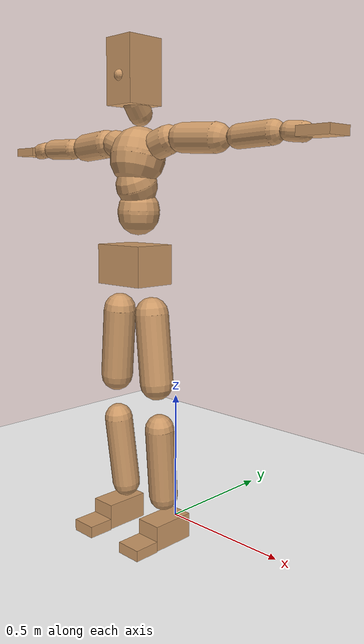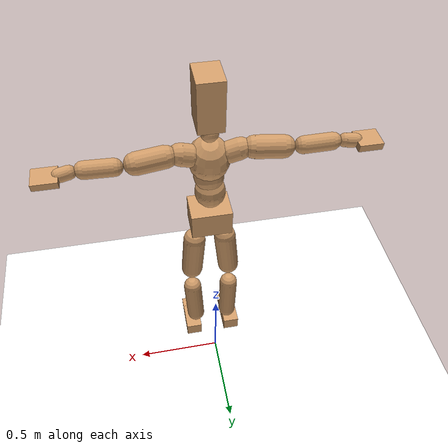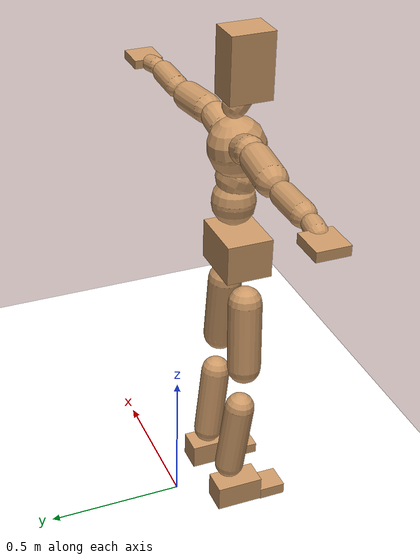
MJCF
<mujoco model="humanoid">
  <option integrator="implicitfast" />

  <visual>
    <global offwidth="1280" offheight="960" />
    <headlight active="1" ambient="0.34 0.34 0.34" diffuse="0.5 0.5 0.5" />
  </visual>

  <default>
    <joint damping="2" stiffness="2" armature="0.01" limited="true" solimplimit="0 .99 .01" />
    <geom condim="1" friction="0.7 0.005 0.0001" solimp=".99 .99 .003" solref="0.015 1" margin="0.001" rgba="0.8 0.6 .4 1" />
    <default class="smplcontact">
      <geom condim="3" friction="1. 0.005 0.0001" solref="0.015 1" solimp="0.98 0.98 0.001" priority="1" />
    </default>
    <default class="stiff_medium">
      <joint stiffness="10" />
    </default>
    <default class="stiff_medium_higher">
      <joint stiffness="50" />
    </default>
    <default class="stiff_high">
      <joint stiffness="100" />
    </default>
  </default>

  <asset>
    <texture type="skybox" builtin="gradient" rgb1="0.99 0.99 0.99" rgb2="0.608 0.828 0.892" width="100" />
    <texture builtin="flat" height="1278" mark="cross" markrgb="1 1 1" name="texgeom" random="0.01" rgb1="0.8 0.6 0.4" rgb2="0.8 0.6 0.4" type="cube" width="127" />
    <texture name="texplane" type="2d" builtin="checker" markrgb="1 1 1" rgb1="0.756 0.772 0.76" rgb2="0.6 0.6 0.6" width="100" height="100" />
    <material name="MatPlane" reflectance="0.5" texture="texplane" texrepeat="1 1" texuniform="true" />
    <material name="geom" texture="texgeom" texuniform="true" />
  </asset>

  <worldbody>
    <light name="tracking_light" pos="0 0 7" dir="0 0 -1" directional="true" cutoff="100" exponent="1" diffuse="1 1 1" specular="0.1 0.1 0.1" mode="trackcom" />
    <camera name="back" pos="0 3 2.4" xyaxes="-1 0 0 0 -1 2" mode="trackcom" />
    <camera name="side" pos="-3 0 2.4" xyaxes="0 -1 0 1 0 2" mode="trackcom" />
    <camera name="front_side" pos="-2.8 -2.8 0.8" xyaxes="0.5 -0.5 0 0.1 0.1 1" mode="trackcom" />
    <geom condim="3" name="floor" pos="0 0 0" rgba="1 1 1 1" size="100 100 .2" type="plane" material="MatPlane" />
    <body name="Pelvis" pos="-0.0018 -0.2233 1.05109" euler="90 0 0">
      <site name="Pelvis" size="0.01" />
      <freejoint name="Pelvis" />
      <geom type="box" pos="-0.0000 -0.0121 -0.0055" size="0.1069 0.0722 0.083" quat="1.0000 0.0000 0.0000 0.0000" density="3165.830099" name="Pelvis" />
      <body name="L_Hip" pos="0.0781875 -0.102825 -0.00765">
        <joint name="L_Hip_x" type="hinge" pos="0 0 0" axis="1 0 0" stiffness="12.190417346938776" range="-160.0 22.92" class="stiff_medium" damping="19.23943835853268" armature="0.013495335550763795"/>
        <joint name="L_Hip_y" type="hinge" pos="0 0 0" axis="0 1 0" stiffness="12.1624156122449" range="-70.0 70.0" class="stiff_medium" damping="12.013485255911052" armature="0.011866378571103064"/>
        <joint name="L_Hip_z" type="hinge" pos="0 0 0" axis="0 0 1" stiffness="12.164813061224491" range="-28.65 90.0" class="stiff_medium" damping="12.81394800146982" armature="0.013497721876857561"/>
        <geom type="capsule" density="2040.816327" fromto="0.0077625 -0.084375 -0.0010125 0.030825 -0.337725 -0.00405" size="0.0615" name="L_Hip" />
        <body name="L_Knee" pos="0.0385875 -0.4221 -0.0050625">
          <joint name="L_Knee_x" type="hinge" pos="0 0 0" axis="1 0 0" range="-5.16 171.89" damping="10.076823862713262" armature="0.013188848617403126" stiffness="2.4059714693877554"/>
          <joint name="L_Knee_y" type="hinge" pos="0 0 0" axis="0 1 0" range="-4.58 6.88" damping="9.486100019400165" armature="0.01159601950664256" stiffness="2.4250264693877552"/>
          <joint name="L_Knee_z" type="hinge" pos="0 0 0" axis="0 0 1" range="-6.88 4.58" damping="10.063496829521757" armature="0.013200099383969124" stiffness="2.3975664285714284"/>
          <geom type="capsule" density="1234.567901" fromto="-0.0030375 -0.08955 -0.0097875 -0.0122625 -0.3582 -0.039375" size="0.0541" name="L_Knee" />
          <body name="L_Ankle" pos="-0.0153 -0.44775 -0.0491625">
            <joint name="L_Ankle_x" type="hinge" pos="0 0 0" axis="1 0 0" range="-45.84 45.84" class="stiff_medium" damping="6.89753281842308" armature="0.011747130867095197" stiffness="11.250018673469388"/>
            <joint name="L_Ankle_y" type="hinge" pos="0 0 0" axis="0 1 0" range="-74.48 22.92" class="stiff_medium" damping="3.439211388477543" armature="0.011682135831686718" stiffness="11.250011836734695"/>
            <joint name="L_Ankle_z" type="hinge" pos="0 0 0" axis="0 0 1" range="-4.58 4.58" class="stiff_medium" damping="6.751978545825227" armature="0.011256596119329419" stiffness="11.25"/>
            <geom type="box" pos="0.0262125 -0.0268875 0.027225" size="0.0483 0.0464 0.085" quat="1.0000 0.0000 0.0000 0.0000" density="449.071558" name="L_Ankle" class="smplcontact" />
            <body name="L_Toe" pos="0.0297 -0.062775 0.134213">
              <joint name="L_Toe_x" type="hinge" pos="0 0 0" axis="1 0 0" range="-91.67 22.92" armature="0.011009874139728131" damping="2.2258578936845135" stiffness="2.25"/>
              <joint name="L_Toe_y" type="hinge" pos="0 0 0" axis="0 1 0" range="-4.58 4.58" armature="0.010711537859158194" damping="2.1954935747164432" stiffness="2.25"/>
              <joint name="L_Toe_z" type="hinge" pos="0 0 0" axis="0 0 1" range="-4.58 4.58" armature="0.010108317957717388" damping="2.132778254055687" stiffness="2.25"/>
              <geom type="box" pos="-0.003375 0.0061875 0.0279" size="0.0478 0.02 0.0496" quat="1.0000 0.0000 0.0000 0.0000" density="423.206892" name="L_Toe" class="smplcontact" />
            </body>
          </body>
        </body>
      </body>
      <body name="R_Hip" pos="-0.0761625 -0.101813 -0.0048375">
        <joint name="R_Hip_x" type="hinge" pos="0 0 0" axis="1 0 0" stiffness="12.190417346938776" range="-160.0 22.92" class="stiff_medium" damping="19.23943835853268" armature="0.013495335550763795"/>
        <joint name="R_Hip_y" type="hinge" pos="0 0 0" axis="0 1 0" stiffness="12.1624156122449" range="-70.0 70.0" class="stiff_medium" damping="12.013485255911052" armature="0.011866378571103064"/>
        <joint name="R_Hip_z" type="hinge" pos="0 0 0" axis="0 0 1" stiffness="12.164813061224491" range="-90.0 28.65" class="stiff_medium" damping="12.81394800146982" armature="0.013497721876857561"/>
        <geom type="capsule" density="2040.816327" fromto="-0.0086625 -0.0860625 -0.002025 -0.034425 -0.344362 -0.0079875" size="0.0606" name="R_Hip" />
        <body name="R_Knee" pos="-0.0430875 -0.430425 -0.0100125">
          <joint name="R_Knee_x" type="hinge" pos="0 0 0" axis="1 0 0" range="-5.16 171.89" damping="10.076823862713262" armature="0.013188848617403126" stiffness="2.4059714693877554"/>
          <joint name="R_Knee_y" type="hinge" pos="0 0 0" axis="0 1 0" range="-6.88 4.58" damping="9.486100019400165" armature="0.01159601950664256" stiffness="2.4250264693877552"/>
          <joint name="R_Knee_z" type="hinge" pos="0 0 0" axis="0 0 1" range="-4.58 6.88" damping="10.063496829521757" armature="0.013200099383969124" stiffness="2.3975664285714284"/>
          <geom type="capsule" density="1234.567901" fromto="0.0036 -0.0896625 -0.0095625 0.014175 -0.358537 -0.038025" size="0.0541" name="R_Knee" />
          <body name="R_Ankle" pos="0.017775 -0.4482 -0.0475875">
            <joint name="R_Ankle_x" type="hinge" pos="0 0 0" axis="1 0 0" range="-45.84 45.84" class="stiff_medium" damping="6.89753281842308" armature="0.011747130867095197" stiffness="11.250018673469388"/>
            <joint name="R_Ankle_y" type="hinge" pos="0 0 0" axis="0 1 0" range="-22.92 74.48" class="stiff_medium" damping="3.439211388477543" armature="0.011682135831686718" stiffness="11.250011836734695"/>
            <joint name="R_Ankle_z" type="hinge" pos="0 0 0" axis="0 0 1" range="-4.58 4.58" class="stiff_medium" damping="6.751978545825227" armature="0.011256596119329419" stiffness="11.25"/>
            <geom type="box" pos="-0.02385 -0.019575 0.0288" size="0.0483 0.0478 0.0865" quat="1.0000 0.0000 0.0000 0.0000" density="434.700981" name="R_Ankle" class="smplcontact" />
            <body name="R_Toe" pos="-0.028575 -0.0541125 0.138713">
              <joint name="R_Toe_x" type="hinge" pos="0 0 0" axis="1 0 0" range="-91.67 22.92" armature="0.011009874139728131" damping="2.2258578936845135" stiffness="2.25"/>
              <joint name="R_Toe_y" type="hinge" pos="0 0 0" axis="0 1 0" range="-4.58 4.58" armature="0.010711537859158194" damping="2.1954935747164432" stiffness="2.25"/>
              <joint name="R_Toe_z" type="hinge" pos="0 0 0" axis="0 0 1" range="-4.58 4.58" armature="0.010108317957717388" damping="2.132778254055687" stiffness="2.25"/>
              <geom type="box" pos="0.004725 0.0050625 0.0255375" size="0.0479 0.0216 0.0493" quat="1.0000 0.0000 0.0000 0.0000" density="407.384095" name="R_Toe" class="smplcontact" />
            </body>
          </body>
        </body>
      </body>
      <body name="Torso" pos="-0.0025 0.109 -0.0267">
        <joint name="Torso_x" type="hinge" pos="0 0 0" axis="1 0 0" range="-25.78 57.3" class="stiff_medium" damping="14.377725126950711" armature="0.009518929822817207" stiffness="9.651831020408164"/>
        <joint name="Torso_y" type="hinge" pos="0 0 0" axis="0 1 0" range="-57.3 57.3" class="stiff_high" damping="17.047281200761137" armature="0.00748954170337838" stiffness="97.00519999999999"/>
        <joint name="Torso_z" type="hinge" pos="0 0 0" axis="0 0 1" range="-34.38 34.38" class="stiff_high" damping="18.56536513512957" armature="0.008825226346331875" stiffness="97.63851063829787"/>
        <geom type="capsule" density="2040.816327" fromto="0.0025 0.0608 0.0005 0.003 0.0743 0.0006" size="0.0769" name="Torso" />
        <body name="Spine" pos="0.0055 0.1352 0.0011">
          <joint name="Spine_x" type="hinge" pos="0 0 0" axis="1 0 0" stiffness="9.58583163265306" range="-25.78 57.3" class="stiff_medium" damping="14.269183612083738" armature="0.009440303089812764"/>
          <joint name="Spine_y" type="hinge" pos="0 0 0" axis="0 1 0" stiffness="9.576922244897958" range="-57.3 57.3" class="stiff_high" damping="6.76738571868883" armature="0.007471983870182017"/>
          <joint name="Spine_z" type="hinge" pos="0 0 0" axis="0 0 1" stiffness="19.01161469387755" range="-34.38 34.38" class="stiff_high" damping="10.689541255547073" armature="0.00834769619738186"/>
          <geom type="capsule" density="2040.816327" fromto="0.0007 0.0238 0.0114 0.0008 0.0291 0.014" size="0.0755" name="Spine" />
          <body name="Chest" pos="0.0015 0.0529 0.0254">
            <joint name="Chest_x" type="hinge" pos="0 0 0" axis="1 0 0" stiffness="9.387211020408163" range="-25.78 57.3" class="stiff_medium" damping="14.087997898862081" armature="0.009396788619791438"/>
            <joint name="Chest_y" type="hinge" pos="0 0 0" axis="0 1 0" stiffness="8.88616191489362" range="-57.3 57.3" class="stiff_high" damping="6.5161693940165115" armature="0.007466043829259931"/>
            <joint name="Chest_z" type="hinge" pos="0 0 0" axis="0 0 1" stiffness="18.95676244897959" range="-34.38 34.38" class="stiff_high" damping="10.53982249103985" armature="0.008138979020284567"/>
            <geom type="capsule" density="2040.816327" fromto="-0.0009 0.0682 -0.0173 -0.001 0.0833 -0.0212" size="0.1002" name="Chest" />
            <body name="Neck" pos="-0.0028 0.2139 -0.0429">
              <joint name="Neck_x" type="hinge" pos="0 0 0" axis="1 0 0" range="-28.65 57.3" class="stiff_medium_higher" damping="10.000000000000002" armature="0.010000000000000005" stiffness="50.0"/>
              <joint name="Neck_y" type="hinge" pos="0 0 0" axis="0 1 0" range="-40.11 40.11" class="stiff_medium_higher" damping="10.0" armature="0.01" stiffness="50.0"/>
              <joint name="Neck_z" type="hinge" pos="0 0 0" axis="0 0 1" range="-40.11 40.11" class="stiff_medium_higher" damping="9.999999999999984" armature="0.009999999999999967" stiffness="50.0"/>
              <geom type="capsule" density="1000" fromto="0.001 0.013 0.0103 0.0041 0.052 0.0411" size="0.0436" name="Neck" />
              <body name="Head" pos="0.0052 0.065 0.0513">
                <joint name="Head_x" type="hinge" pos="0 0 0" axis="1 0 0" range="-28.65 57.3" class="stiff_medium_higher" damping="2.0000000000000013" armature="0.010000000000000014" stiffness="50.0"/>
                <joint name="Head_y" type="hinge" pos="0 0 0" axis="0 1 0" range="-40.11 40.11" class="stiff_medium_higher" damping="2.0" armature="0.01" stiffness="50.0"/>
                <joint name="Head_z" type="hinge" pos="0 0 0" axis="0 0 1" range="-40.11 40.11" class="stiff_medium_higher" damping="1.999999999999996" armature="0.009999999999999962" stiffness="50.0"/>
                <geom type="box" pos="-0.0042 0.0876 -0.0116" size="0.0606 0.1154 0.076" quat="1.0000 0.0000 0.0000 0.0000" density="1018.069894" name="Head" />
                <geom type="capsule" name="nose" size="0.02 0.01" pos="0 0.07 0.05" quat="1 0 0 0" mass="0" contype="0" conaffinity="0" />
              </body>
            </body>
            <body name="L_Thorax" pos="0.069935 0.108009 -0.0302637">
              <joint name="L_Thorax_x" type="hinge" pos="0 0 0" axis="1 0 0" range="-10.89 4.58" class="stiff_medium_higher" damping="16.503674429364374" armature="0.008237289712880779" stiffness="41.33205204081632"/>
              <joint name="L_Thorax_y" type="hinge" pos="0 0 0" axis="0 1 0" range="-28.65 17.19" class="stiff_medium_higher" damping="15.615380485833972" armature="0.007397181758642917" stiffness="41.2049"/>
              <joint name="L_Thorax_z" type="hinge" pos="0 0 0" axis="0 0 1" range="-31.51 40.11" class="stiff_medium_higher" damping="15.614845288813928" armature="0.007396422580499298" stiffness="41.206304591836734"/>
              <geom type="capsule" density="1000" fromto="0.0161525 0.00541375 -0.0015975 0.06461 0.021655 -0.00630125" size="0.0521" name="L_Thorax" />
              <body name="L_Shoulder" pos="0.0807625 0.0270687 -0.00789875">
                <joint name="L_Shoulder_x" type="hinge" pos="0 0 0" axis="1 0 0" range="-97.4 97.4" class="stiff_medium" damping="5.053222703168458" armature="0.008561219507331179" stiffness="8.28511887755102"/>
                <joint name="L_Shoulder_y" type="hinge" pos="0 0 0" axis="0 1 0" range="-108.86 80.21" class="stiff_medium" damping="4.696052433643626" armature="0.007424828192243072" stiffness="8.25043724489796"/>
                <joint name="L_Shoulder_z" type="hinge" pos="0 0 0" axis="0 0 1" range="-97.4 85.94" class="stiff_medium" damping="4.696316861704074" armature="0.007423822707357087" stiffness="8.252483979591837"/>
                <geom type="capsule" density="1000" fromto="0.0460612 -0.0023075 -0.00488125 0.184334 -0.0090525 -0.019525" size="0.0517" name="L_Shoulder" />
                <body name="L_Elbow" pos="0.230395 -0.01136 -0.0244062">
                  <joint name="L_Elbow_x" type="hinge" pos="0 0 0" axis="1 0 0" range="-17.19 4.58" damping="4.3579059063054695" armature="0.009089595760700146" stiffness="1.6714797346938777"/>
                  <joint name="L_Elbow_y" type="hinge" pos="0 0 0" axis="0 1 0" range="-180.0 17.19" damping="3.9739600722787465" armature="0.007559999182253762" stiffness="1.6711492448979592"/>
                  <joint name="L_Elbow_z" type="hinge" pos="0 0 0" axis="0 0 1" range="-100.84 4.58" damping="3.9732408069423286" armature="0.0075547215269742" stiffness="1.671711387755102"/>
                  <geom type="capsule" density="1000" fromto="0.0441975 0.0015975 -0.0001775 0.176967 0.00639 -0.00079875" size="0.0405" name="L_Elbow" />
                  <body name="L_Wrist" pos="0.221165 0.0079875 -0.001065">
                    <joint name="L_Wrist_x" type="hinge" pos="0 0 0" axis="1 0 0" range="-180.0 22.92" armature="0.00926838898361576" damping="1.7953441559357406" stiffness="1.738846224489796"/>
                    <joint name="L_Wrist_y" type="hinge" pos="0 0 0" axis="0 1 0" range="-17.19 17.19" armature="0.00803990733878762" damping="1.6695812073111225" stiffness="1.7335407551020405"/>
                    <joint name="L_Wrist_z" type="hinge" pos="0 0 0" axis="0 0 1" range="-22.92 22.92" armature="0.007970783232335151" damping="1.6634142634626026" stiffness="1.7356807551020408"/>
                    <geom type="capsule" density="1000" fromto="0.01491 -0.00142 -0.0026625 0.05964 -0.00576875 -0.01065" size="0.0318" name="L_Wrist" class="smplcontact" />
                    <body name="L_Hand" pos="0.07455 -0.0072775 -0.0132237">
                      <joint name="L_Hand_x" type="hinge" pos="0 0 0" axis="1 0 0" range="-17.19 17.19" armature="0.00990748998101929" damping="1.8754085109863545" stiffness="1.7749990612244897"/>
                      <joint name="L_Hand_y" type="hinge" pos="0 0 0" axis="0 1 0" range="-51.57 51.57" armature="0.008881214164335046" damping="1.7756208279347863" stiffness="1.7749990408163265"/>
                      <joint name="L_Hand_z" type="hinge" pos="0 0 0" axis="0 0 1" range="-91.67 91.67" armature="0.00860764640211081" damping="1.7480597104275521" stiffness="1.7749990000000002"/>
                      <geom type="box" pos="0.0437537 0.0008875 -0.0051475" size="0.0585 0.0158 0.0538" quat="1.0000 0.0000 0.0000 0.0000" density="400.552564" name="L_Hand" class="smplcontact" />
                    </body>
                  </body>
                </body>
              </body>
            </body>
            <body name="R_Thorax" pos="-0.0725975 0.105435 -0.0342575">
              <joint name="R_Thorax_x" type="hinge" pos="0 0 0" axis="1 0 0" range="-10.89 4.58" class="stiff_medium_higher" damping="16.503674429364374" armature="0.008237289712880779" stiffness="41.33205204081632"/>
              <joint name="R_Thorax_y" type="hinge" pos="0 0 0" axis="0 1 0" range="-17.19 28.65" class="stiff_medium_higher" damping="15.615380485833972" armature="0.007397181758642917" stiffness="41.2049"/>
              <joint name="R_Thorax_z" type="hinge" pos="0 0 0" axis="0 0 1" range="-40.11 31.51" class="stiff_medium_higher" damping="15.614845288813928" armature="0.007396422580499298" stiffness="41.206304591836734"/>
              <geom type="capsule" density="1000" fromto="-0.01704 0.00576875 -0.0015975 -0.06816 0.023075 -0.00647875" size="0.0511" name="R_Thorax" />
              <body name="R_Shoulder" pos="-0.0852 0.0289325 -0.00807625">
                <joint name="R_Shoulder_x" type="hinge" pos="0 0 0" axis="1 0 0" range="-97.4 97.4" class="stiff_medium" damping="5.053222703168458" armature="0.008561219507331179" stiffness="8.28511887755102"/>
                <joint name="R_Shoulder_y" type="hinge" pos="0 0 0" axis="0 1 0" range="-80.21 108.86" class="stiff_medium" damping="4.696052433643626" armature="0.007424828192243072" stiffness="8.25043724489796"/>
                <joint name="R_Shoulder_z" type="hinge" pos="0 0 0" axis="0 0 1" range="-85.94 97.4" class="stiff_medium" damping="4.696316861704074" armature="0.007423822707357087" stiffness="8.252483979591837"/>
                <geom type="capsule" density="1000" fromto="-0.0449963 -0.00239625 -0.00381625 -0.180163 -0.00949625 -0.0151763" size="0.0531" name="R_Shoulder" />
                <body name="R_Elbow" pos="-0.225159 -0.0118037 -0.0189925">
                  <joint name="R_Elbow_x" type="hinge" pos="0 0 0" axis="1 0 0" range="-17.19 4.58" damping="4.3579059063054695" armature="0.009089595760700146" stiffness="1.6714797346938777"/>
                  <joint name="R_Elbow_y" type="hinge" pos="0 0 0" axis="0 1 0" range="-17.19 180.0" damping="3.9739600722787465" armature="0.007559999182253762" stiffness="1.6711492448979592"/>
                  <joint name="R_Elbow_z" type="hinge" pos="0 0 0" axis="0 0 1" range="-4.58 100.84" damping="3.9732408069423286" armature="0.0075547215269742" stiffness="1.671711387755102"/>
                  <geom type="capsule" density="1000" fromto="-0.0453512 0.00142 -0.00097625 -0.181227 0.0055025 -0.003905" size="0.0408" name="R_Elbow" />
                  <body name="R_Wrist" pos="-0.226579 0.0069225 -0.00497">
                    <joint name="R_Wrist_x" type="hinge" pos="0 0 0" axis="1 0 0" range="-180.0 22.92" armature="0.00926838898361576" damping="1.7953441559357406" stiffness="1.738846224489796"/>
                    <joint name="R_Wrist_y" type="hinge" pos="0 0 0" axis="0 1 0" range="-17.19 17.19" armature="0.00803990733878762" damping="1.6695812073111225" stiffness="1.7335407551020405"/>
                    <joint name="R_Wrist_z" type="hinge" pos="0 0 0" axis="0 0 1" range="-22.92 22.92" armature="0.007970783232335151" damping="1.6634142634626026" stiffness="1.7356807551020408"/>
                    <geom type="capsule" density="1000" fromto="-0.0149987 -0.001065 -0.00186375 -0.0600837 -0.00434875 -0.00736625" size="0.0326" name="R_Wrist" class="smplcontact" />
                    <body name="R_Hand" pos="-0.0750825 -0.00541375 -0.00914125">
                      <joint name="R_Hand_x" type="hinge" pos="0 0 0" axis="1 0 0" range="-17.19 17.19" armature="0.00990748998101929" damping="1.8754085109863545" stiffness="1.7749990612244897"/>
                      <joint name="R_Hand_y" type="hinge" pos="0 0 0" axis="0 1 0" range="-51.57 51.57" armature="0.008881214164335046" damping="1.7756208279347863" stiffness="1.7749990408163265"/>
                      <joint name="R_Hand_z" type="hinge" pos="0 0 0" axis="0 0 1" range="-91.67 91.67" armature="0.00860764640211081" damping="1.7480597104275521" stiffness="1.7749990000000002"/>
                      <geom type="box" pos="-0.0410025 -0.00079875 -0.00701125" size="0.0569 0.0164 0.0546" quat="1.0000 0.0000 0.0000 0.0000" density="403.679611" name="R_Hand" class="smplcontact" />
                    </body>
                  </body>
                </body>
              </body>
            </body>
          </body>
        </body>
      </body>
    </body>
  </worldbody>
  <actuator>
    <general name="L_Hip_x" joint="L_Hip_x" biastype="affine" gainprm="350.267339766903" biasprm="-262.4898695344799 -219.42751224489797 -2.565258447804357" ctrllimited="true" ctrlrange="-1 1" forcerange="-438.85502448979594 438.85502448979594" />
    <general name="L_Hip_y" joint="L_Hip_y" biastype="affine" gainprm="267.4654887613407" biasprm="0.0 -218.9234810204082 -2.4026970511822103" ctrllimited="true" ctrlrange="-1 1" forcerange="-437.8469620408164 437.8469620408164" />
    <general name="L_Hip_z" joint="L_Hip_z" biastype="affine" gainprm="226.72168417679922" biasprm="117.23030193212499 -218.96663510204084 -2.562789600293964" ctrllimited="true" ctrlrange="-1 1" forcerange="-437.9332702040817 437.9332702040817" />
    <general name="L_Knee_x" joint="L_Knee_x" biastype="affine" gainprm="334.5617487428154" biasprm="315.0606064269393 -216.53743224489799 -2.5192059656783155" ctrllimited="true" ctrlrange="-1 1" forcerange="-433.07486448979597 433.07486448979597" />
    <general name="L_Knee_y" joint="L_Knee_y" biastype="affine" gainprm="21.82684590193453" biasprm="4.380606071068885 -218.25238224489797 -2.3715250048500414" ctrllimited="true" ctrlrange="-1 1" forcerange="-436.50476448979595 436.50476448979595" />
    <general name="L_Knee_z" joint="L_Knee_z" biastype="affine" gainprm="21.579687329883924" biasprm="-4.331001820133772 -215.78097857142856 -2.515874207380439" ctrllimited="true" ctrlrange="-1 1" forcerange="-431.5619571428571 431.5619571428571" />
    <general name="L_Ankle_x" joint="L_Ankle_x" biastype="affine" gainprm="81.00610103169612" biasprm="0.0 -101.2501680612245 -2.299177606141027" ctrllimited="true" ctrlrange="-1 1" forcerange="-202.500336122449 202.500336122449" />
    <general name="L_Ankle_y" joint="L_Ankle_y" biastype="affine" gainprm="86.06009430266938" biasprm="-45.557068400879196 -101.25010653061226 -2.2928075923183617" ctrllimited="true" ctrlrange="-1 1" forcerange="-202.5002130612245 202.5002130612245" />
    <general name="L_Ankle_z" joint="L_Ankle_z" biastype="affine" gainprm="8.093528073810704" biasprm="0.0 -101.25 -2.2506595152750757" ctrllimited="true" ctrlrange="-1 1" forcerange="-202.5 202.5" />
    <general name="L_Toe_x" joint="L_Toe_x" biastype="affine" gainprm="80.99889798934223" biasprm="-48.59651136021711 -81.0 -0.8903431574738054" ctrllimited="true" ctrlrange="-1 1" forcerange="-162.0 162.0" />
    <general name="L_Toe_y" joint="L_Toe_y" biastype="affine" gainprm="6.474822459048563" biasprm="0.0 -81.0 -0.8781974298865773" ctrllimited="true" ctrlrange="-1 1" forcerange="-162.0 162.0" />
    <general name="L_Toe_z" joint="L_Toe_z" biastype="affine" gainprm="6.474822459048563" biasprm="0.0 -81.0 -0.8531113016222749" ctrllimited="true" ctrlrange="-1 1" forcerange="-162.0 162.0" />
    <general name="R_Hip_x" joint="R_Hip_x" biastype="affine" gainprm="350.267339766903" biasprm="-262.4898695344799 -219.42751224489797 -2.565258447804357" ctrllimited="true" ctrlrange="-1 1" forcerange="-438.85502448979594 438.85502448979594" />
    <general name="R_Hip_y" joint="R_Hip_y" biastype="affine" gainprm="267.4654887613407" biasprm="0.0 -218.9234810204082 -2.4026970511822103" ctrllimited="true" ctrlrange="-1 1" forcerange="-437.8469620408164 437.8469620408164" />
    <general name="R_Hip_z" joint="R_Hip_z" biastype="affine" gainprm="226.72168417679922" biasprm="-117.23030193212499 -218.96663510204084 -2.562789600293964" ctrllimited="true" ctrlrange="-1 1" forcerange="-437.9332702040817 437.9332702040817" />
    <general name="R_Knee_x" joint="R_Knee_x" biastype="affine" gainprm="334.5617487428154" biasprm="315.0606064269393 -216.53743224489799 -2.5192059656783155" ctrllimited="true" ctrlrange="-1 1" forcerange="-433.07486448979597 433.07486448979597" />
    <general name="R_Knee_y" joint="R_Knee_y" biastype="affine" gainprm="21.82684590193453" biasprm="-4.380606071068885 -218.25238224489797 -2.3715250048500414" ctrllimited="true" ctrlrange="-1 1" forcerange="-436.50476448979595 436.50476448979595" />
    <general name="R_Knee_z" joint="R_Knee_z" biastype="affine" gainprm="21.579687329883924" biasprm="4.331001820133772 -215.78097857142856 -2.515874207380439" ctrllimited="true" ctrlrange="-1 1" forcerange="-431.5619571428571 431.5619571428571" />
    <general name="R_Ankle_x" joint="R_Ankle_x" biastype="affine" gainprm="81.00610103169612" biasprm="0.0 -101.2501680612245 -2.299177606141027" ctrllimited="true" ctrlrange="-1 1" forcerange="-202.500336122449 202.500336122449" />
    <general name="R_Ankle_y" joint="R_Ankle_y" biastype="affine" gainprm="86.06009430266938" biasprm="45.557068400879196 -101.25010653061226 -2.2928075923183617" ctrllimited="true" ctrlrange="-1 1" forcerange="-202.5002130612245 202.5002130612245" />
    <general name="R_Ankle_z" joint="R_Ankle_z" biastype="affine" gainprm="8.093528073810704" biasprm="0.0 -101.25 -2.2506595152750757" ctrllimited="true" ctrlrange="-1 1" forcerange="-202.5 202.5" />
    <general name="R_Toe_x" joint="R_Toe_x" biastype="affine" gainprm="80.99889798934223" biasprm="-48.59651136021711 -81.0 -0.8903431574738054" ctrllimited="true" ctrlrange="-1 1" forcerange="-162.0 162.0" />
    <general name="R_Toe_y" joint="R_Toe_y" biastype="affine" gainprm="6.474822459048563" biasprm="0.0 -81.0 -0.8781974298865773" ctrllimited="true" ctrlrange="-1 1" forcerange="-162.0 162.0" />
    <general name="R_Toe_z" joint="R_Toe_z" biastype="affine" gainprm="6.474822459048563" biasprm="0.0 -81.0 -0.8531113016222749" ctrllimited="true" ctrlrange="-1 1" forcerange="-162.0 162.0" />
    <general name="Torso_x" joint="Torso_x" biastype="affine" gainprm="167.94412321258363" biasprm="63.71688449278569 -231.64394448979593 -3.834060033853523" ctrllimited="true" ctrlrange="-1 1" forcerange="-347.4659167346939 347.4659167346939" />
    <general name="Torso_y" joint="Torso_y" biastype="affine" gainprm="232.82962929152654" biasprm="0.0 -232.81248 -3.4094562401522275" ctrllimited="true" ctrlrange="-1 1" forcerange="-349.21871999999996 349.21871999999996" />
    <general name="Torso_z" joint="Torso_z" biastype="affine" gainprm="140.60981207084777" biasprm="0.0 -234.33242553191488 -3.713073027025914" ctrllimited="true" ctrlrange="-1 1" forcerange="-351.49863829787233 351.49863829787233" />
    <general name="Spine_x" joint="Spine_x" biastype="affine" gainprm="166.79571838808337" biasprm="63.28118733259974 -230.05995918367344 -3.8051156298889968" ctrllimited="true" ctrlrange="-1 1" forcerange="-345.0899387755102 345.0899387755102" />
    <general name="Spine_y" joint="Spine_y" biastype="affine" gainprm="229.8630646638908" biasprm="0.0 -229.846133877551 -3.383692859344415" ctrllimited="true" ctrlrange="-1 1" forcerange="-344.76920081632653 344.76920081632653" />
    <general name="Spine_z" joint="Spine_z" biastype="affine" gainprm="136.89370883443928" biasprm="0.0 -228.1393763265306 -3.5631804185156914" ctrllimited="true" ctrlrange="-1 1" forcerange="-342.2090644897959 342.2090644897959" />
    <general name="Chest_x" joint="Chest_x" biastype="affine" gainprm="163.33967315636679" biasprm="61.969986734336544 -225.29306448979594 -3.756799439696555" ctrllimited="true" ctrlrange="-1 1" forcerange="-337.9395967346939 337.9395967346939" />
    <general name="Chest_y" joint="Chest_y" biastype="affine" gainprm="213.2835955669555" biasprm="0.0 -213.26788595744688 -3.2580846970082558" ctrllimited="true" ctrlrange="-1 1" forcerange="-319.9018289361703 319.9018289361703" />
    <general name="Chest_z" joint="Chest_z" biastype="affine" gainprm="136.49874357962614" biasprm="0.0 -227.48114938775507 -3.51327416367995" ctrllimited="true" ctrlrange="-1 1" forcerange="-341.2217240816326 341.2217240816326" />
    <general name="Neck_x" joint="Neck_x" biastype="affine" gainprm="27.00198885760427" biasprm="9.000662952534757 -36.0 -0.8000000000000003" ctrllimited="true" ctrlrange="-1 1" forcerange="-72.0 72.0" />
    <general name="Neck_y" joint="Neck_y" biastype="affine" gainprm="25.20185626709732" biasprm="0.0 -36.0 -0.8" ctrllimited="true" ctrlrange="-1 1" forcerange="-72.0 72.0" />
    <general name="Neck_z" joint="Neck_z" biastype="affine" gainprm="25.20185626709732" biasprm="0.0 -36.0 -0.7999999999999987" ctrllimited="true" ctrlrange="-1 1" forcerange="-72.0 72.0" />
    <general name="Head_x" joint="Head_x" biastype="affine" gainprm="18.001325905069514" biasprm="6.000441968356505 -24.0 -0.8000000000000006" ctrllimited="true" ctrlrange="-1 1" forcerange="-48.0 48.0" />
    <general name="Head_y" joint="Head_y" biastype="affine" gainprm="16.801237511398213" biasprm="0.0 -24.0 -0.8" ctrllimited="true" ctrlrange="-1 1" forcerange="-48.0 48.0" />
    <general name="Head_z" joint="Head_z" biastype="affine" gainprm="16.801237511398213" biasprm="0.0 -24.0 -0.7999999999999985" ctrllimited="true" ctrlrange="-1 1" forcerange="-48.0 48.0" />
    <general name="L_Thorax_x" joint="L_Thorax_x" biastype="affine" gainprm="13.391705647542844" biasprm="-5.462292348803839 -99.19692489795918 -1.3202939543491499" ctrllimited="true" ctrlrange="-1 1" forcerange="-198.39384979591836 198.39384979591836" />
    <general name="L_Thorax_y" joint="L_Thorax_y" biastype="affine" gainprm="39.55961780190927" biasprm="-9.889904450477317 -98.89176 -1.249230438866718" ctrllimited="true" ctrlrange="-1 1" forcerange="-197.78352 197.78352" />
    <general name="L_Thorax_z" joint="L_Thorax_z" biastype="affine" gainprm="61.80969474430838" biasprm="7.4219962971383975 -98.89513102040816 -1.2491876231051142" ctrllimited="true" ctrlrange="-1 1" forcerange="-197.79026204081632 197.79026204081632" />
    <general name="L_Shoulder_x" joint="L_Shoulder_x" biastype="affine" gainprm="67.60460910996468" biasprm="0.0 -39.768570612244886 -1.3475260541782554" ctrllimited="true" ctrlrange="-1 1" forcerange="-79.53714122448977 79.53714122448977" />
    <general name="L_Shoulder_y" joint="L_Shoulder_y" biastype="affine" gainprm="65.34136439993874" biasprm="-9.901253980315465 -39.6020987755102 -1.2522806489716336" ctrllimited="true" ctrlrange="-1 1" forcerange="-79.2041975510204 79.2041975510204" />
    <general name="L_Shoulder_z" joint="L_Shoulder_z" biastype="affine" gainprm="63.376831969533896" biasprm="-3.9614840971466134 -39.61192310204081 -1.2523511631210864" ctrllimited="true" ctrlrange="-1 1" forcerange="-79.22384620408162 79.22384620408162" />
    <general name="L_Elbow_x" joint="L_Elbow_x" biastype="affine" gainprm="11.43166310683652" biasprm="-6.621647761929654 -60.17327044897959 -0.6972649450088751" ctrllimited="true" ctrlrange="-1 1" forcerange="-120.34654089795919 120.34654089795919" />
    <general name="L_Elbow_y" joint="L_Elbow_y" biastype="affine" gainprm="103.52613409284974" biasprm="-85.47639277679836 -60.16137281632653 -0.6358336115645995" ctrllimited="true" ctrlrange="-1 1" forcerange="-120.32274563265307 120.32274563265307" />
    <general name="L_Elbow_z" joint="L_Elbow_z" biastype="affine" gainprm="55.364857375302314" biasprm="-50.55417540264278 -60.181609959183675 -0.6357185291107726" ctrllimited="true" ctrlrange="-1 1" forcerange="-120.36321991836735 120.36321991836735" />
    <general name="L_Wrist_x" joint="L_Wrist_x" biastype="affine" gainprm="18.475008746127838" biasprm="-14.301470401349109 -10.433077346938775 -0.7181376623742963" ctrllimited="true" ctrlrange="-1 1" forcerange="-20.86615469387755 20.86615469387755" />
    <general name="L_Wrist_y" joint="L_Wrist_y" biastype="affine" gainprm="3.120603210231214" biasprm="0.0 -10.401244530612242 -0.6678324829244491" ctrllimited="true" ctrlrange="-1 1" forcerange="-20.802489061224485 20.802489061224485" />
    <general name="L_Wrist_z" joint="L_Wrist_z" biastype="affine" gainprm="4.165940658633199" biasprm="0.0 -10.414084530612245 -0.665365705385041" ctrllimited="true" ctrlrange="-1 1" forcerange="-20.82816906122449 20.82816906122449" />
    <general name="L_Hand_x" joint="L_Hand_x" biastype="affine" gainprm="3.1952336582294483" biasprm="0.0 -10.649994367346938 -0.7501634043945419" ctrllimited="true" ctrlrange="-1 1" forcerange="-21.299988734693876 21.299988734693876" />
    <general name="L_Hand_y" joint="L_Hand_y" biastype="affine" gainprm="9.585700864476143" biasprm="0.0 -10.64999424489796 -0.7102483311739145" ctrllimited="true" ctrlrange="-1 1" forcerange="-21.29998848979592 21.29998848979592" />
    <general name="L_Hand_z" joint="L_Hand_z" biastype="affine" gainprm="17.03938681481915" biasprm="0.0 -10.649994000000001 -0.6992238841710209" ctrllimited="true" ctrlrange="-1 1" forcerange="-21.299988000000003 21.299988000000003" />
    <general name="R_Thorax_x" joint="R_Thorax_x" biastype="affine" gainprm="13.391705647542844" biasprm="-5.462292348803839 -99.19692489795918 -1.3202939543491499" ctrllimited="true" ctrlrange="-1 1" forcerange="-198.39384979591836 198.39384979591836" />
    <general name="R_Thorax_y" joint="R_Thorax_y" biastype="affine" gainprm="39.55961780190927" biasprm="9.889904450477312 -98.89176 -1.249230438866718" ctrllimited="true" ctrlrange="-1 1" forcerange="-197.78352 197.78352" />
    <general name="R_Thorax_z" joint="R_Thorax_z" biastype="affine" gainprm="61.80969474430838" biasprm="-7.4219962971383975 -98.89513102040816 -1.2491876231051142" ctrllimited="true" ctrlrange="-1 1" forcerange="-197.79026204081632 197.79026204081632" />
    <general name="R_Shoulder_x" joint="R_Shoulder_x" biastype="affine" gainprm="67.60460910996468" biasprm="0.0 -39.768570612244886 -1.3475260541782554" ctrllimited="true" ctrlrange="-1 1" forcerange="-79.53714122448977 79.53714122448977" />
    <general name="R_Shoulder_y" joint="R_Shoulder_y" biastype="affine" gainprm="65.34136439993874" biasprm="9.901253980315465 -39.6020987755102 -1.2522806489716336" ctrllimited="true" ctrlrange="-1 1" forcerange="-79.2041975510204 79.2041975510204" />
    <general name="R_Shoulder_z" joint="R_Shoulder_z" biastype="affine" gainprm="63.376831969533896" biasprm="3.9614840971466045 -39.61192310204081 -1.2523511631210864" ctrllimited="true" ctrlrange="-1 1" forcerange="-79.22384620408162 79.22384620408162" />
    <general name="R_Elbow_x" joint="R_Elbow_x" biastype="affine" gainprm="11.43166310683652" biasprm="-6.621647761929654 -60.17327044897959 -0.6972649450088751" ctrllimited="true" ctrlrange="-1 1" forcerange="-120.34654089795919 120.34654089795919" />
    <general name="R_Elbow_y" joint="R_Elbow_y" biastype="affine" gainprm="103.52613409284974" biasprm="85.47639277679836 -60.16137281632653 -0.6358336115645995" ctrllimited="true" ctrlrange="-1 1" forcerange="-120.32274563265307 120.32274563265307" />
    <general name="R_Elbow_z" joint="R_Elbow_z" biastype="affine" gainprm="55.364857375302314" biasprm="50.55417540264277 -60.181609959183675 -0.6357185291107726" ctrllimited="true" ctrlrange="-1 1" forcerange="-120.36321991836735 120.36321991836735" />
    <general name="R_Wrist_x" joint="R_Wrist_x" biastype="affine" gainprm="18.475008746127838" biasprm="-14.301470401349109 -10.433077346938775 -0.7181376623742963" ctrllimited="true" ctrlrange="-1 1" forcerange="-20.86615469387755 20.86615469387755" />
    <general name="R_Wrist_y" joint="R_Wrist_y" biastype="affine" gainprm="3.120603210231214" biasprm="0.0 -10.401244530612242 -0.6678324829244491" ctrllimited="true" ctrlrange="-1 1" forcerange="-20.802489061224485 20.802489061224485" />
    <general name="R_Wrist_z" joint="R_Wrist_z" biastype="affine" gainprm="4.165940658633199" biasprm="0.0 -10.414084530612245 -0.665365705385041" ctrllimited="true" ctrlrange="-1 1" forcerange="-20.82816906122449 20.82816906122449" />
    <general name="R_Hand_x" joint="R_Hand_x" biastype="affine" gainprm="3.1952336582294483" biasprm="0.0 -10.649994367346938 -0.7501634043945419" ctrllimited="true" ctrlrange="-1 1" forcerange="-21.299988734693876 21.299988734693876" />
    <general name="R_Hand_y" joint="R_Hand_y" biastype="affine" gainprm="9.585700864476143" biasprm="0.0 -10.64999424489796 -0.7102483311739145" ctrllimited="true" ctrlrange="-1 1" forcerange="-21.29998848979592 21.29998848979592" />
    <general name="R_Hand_z" joint="R_Hand_z" biastype="affine" gainprm="17.03938681481915" biasprm="0.0 -10.649994000000001 -0.6992238841710209" ctrllimited="true" ctrlrange="-1 1" forcerange="-21.299988000000003 21.299988000000003" />
  </actuator>
  <contact>
    <exclude body1="Torso" body2="Chest" />
    <exclude body1="Head" body2="Chest" />
    <exclude body1="R_Knee" body2="R_Toe" />
    <exclude body1="R_Knee" body2="L_Ankle" />
    <exclude body1="R_Knee" body2="L_Toe" />
    <exclude body1="L_Knee" body2="L_Toe" />
    <exclude body1="L_Knee" body2="R_Ankle" />
    <exclude body1="L_Knee" body2="R_Toe" />
    <exclude body1="L_Shoulder" body2="Chest" />
    <exclude body1="R_Shoulder" body2="Chest" />
  </contact>
  <sensor>
    <framelinvel name="sensor_Pelvis_framelinvel" objtype="xbody" objname="Pelvis" />
    <framelinvel name="sensor_L_Hip_framelinvel" objtype="xbody" objname="L_Hip" />
    <framelinvel name="sensor_L_Knee_framelinvel" objtype="xbody" objname="L_Knee" />
    <framelinvel name="sensor_L_Ankle_framelinvel" objtype="xbody" objname="L_Ankle" />
    <framelinvel name="sensor_L_Toe_framelinvel" objtype="xbody" objname="L_Toe" />
    <framelinvel name="sensor_R_Hip_framelinvel" objtype="xbody" objname="R_Hip" />
    <framelinvel name="sensor_R_Knee_framelinvel" objtype="xbody" objname="R_Knee" />
    <framelinvel name="sensor_R_Ankle_framelinvel" objtype="xbody" objname="R_Ankle" />
    <framelinvel name="sensor_R_Toe_framelinvel" objtype="xbody" objname="R_Toe" />
    <framelinvel name="sensor_Torso_framelinvel" objtype="xbody" objname="Torso" />
    <framelinvel name="sensor_Spine_framelinvel" objtype="xbody" objname="Spine" />
    <framelinvel name="sensor_Chest_framelinvel" objtype="xbody" objname="Chest" />
    <framelinvel name="sensor_Neck_framelinvel" objtype="xbody" objname="Neck" />
    <framelinvel name="sensor_Head_framelinvel" objtype="xbody" objname="Head" />
    <framelinvel name="sensor_L_Thorax_framelinvel" objtype="xbody" objname="L_Thorax" />
    <framelinvel name="sensor_L_Shoulder_framelinvel" objtype="xbody" objname="L_Shoulder" />
    <framelinvel name="sensor_L_Elbow_framelinvel" objtype="xbody" objname="L_Elbow" />
    <framelinvel name="sensor_L_Wrist_framelinvel" objtype="xbody" objname="L_Wrist" />
    <framelinvel name="sensor_L_Hand_framelinvel" objtype="xbody" objname="L_Hand" />
    <framelinvel name="sensor_R_Thorax_framelinvel" objtype="xbody" objname="R_Thorax" />
    <framelinvel name="sensor_R_Shoulder_framelinvel" objtype="xbody" objname="R_Shoulder" />
    <framelinvel name="sensor_R_Elbow_framelinvel" objtype="xbody" objname="R_Elbow" />
    <framelinvel name="sensor_R_Wrist_framelinvel" objtype="xbody" objname="R_Wrist" />
    <framelinvel name="sensor_R_Hand_framelinvel" objtype="xbody" objname="R_Hand" />
    <frameangvel name="sensor_Pelvis_frameangvel" objtype="xbody" objname="Pelvis" />
    <frameangvel name="sensor_L_Hip_frameangvel" objtype="xbody" objname="L_Hip" />
    <frameangvel name="sensor_L_Knee_frameangvel" objtype="xbody" objname="L_Knee" />
    <frameangvel name="sensor_L_Ankle_frameangvel" objtype="xbody" objname="L_Ankle" />
    <frameangvel name="sensor_L_Toe_frameangvel" objtype="xbody" objname="L_Toe" />
    <frameangvel name="sensor_R_Hip_frameangvel" objtype="xbody" objname="R_Hip" />
    <frameangvel name="sensor_R_Knee_frameangvel" objtype="xbody" objname="R_Knee" />
    <frameangvel name="sensor_R_Ankle_frameangvel" objtype="xbody" objname="R_Ankle" />
    <frameangvel name="sensor_R_Toe_frameangvel" objtype="xbody" objname="R_Toe" />
    <frameangvel name="sensor_Torso_frameangvel" objtype="xbody" objname="Torso" />
    <frameangvel name="sensor_Spine_frameangvel" objtype="xbody" objname="Spine" />
    <frameangvel name="sensor_Chest_frameangvel" objtype="xbody" objname="Chest" />
    <frameangvel name="sensor_Neck_frameangvel" objtype="xbody" objname="Neck" />
    <frameangvel name="sensor_Head_frameangvel" objtype="xbody" objname="Head" />
    <frameangvel name="sensor_L_Thorax_frameangvel" objtype="xbody" objname="L_Thorax" />
    <frameangvel name="sensor_L_Shoulder_frameangvel" objtype="xbody" objname="L_Shoulder" />
    <frameangvel name="sensor_L_Elbow_frameangvel" objtype="xbody" objname="L_Elbow" />
    <frameangvel name="sensor_L_Wrist_frameangvel" objtype="xbody" objname="L_Wrist" />
    <frameangvel name="sensor_L_Hand_frameangvel" objtype="xbody" objname="L_Hand" />
    <frameangvel name="sensor_R_Thorax_frameangvel" objtype="xbody" objname="R_Thorax" />
    <frameangvel name="sensor_R_Shoulder_frameangvel" objtype="xbody" objname="R_Shoulder" />
    <frameangvel name="sensor_R_Elbow_frameangvel" objtype="xbody" objname="R_Elbow" />
    <frameangvel name="sensor_R_Wrist_frameangvel" objtype="xbody" objname="R_Wrist" />
    <frameangvel name="sensor_R_Hand_frameangvel" objtype="xbody" objname="R_Hand" />
    <subtreelinvel name="Chest_subtreelinvel" body="Chest" />
    <gyro name="Pelvis_gyro" site="Pelvis" />
  </sensor>
</mujoco>
